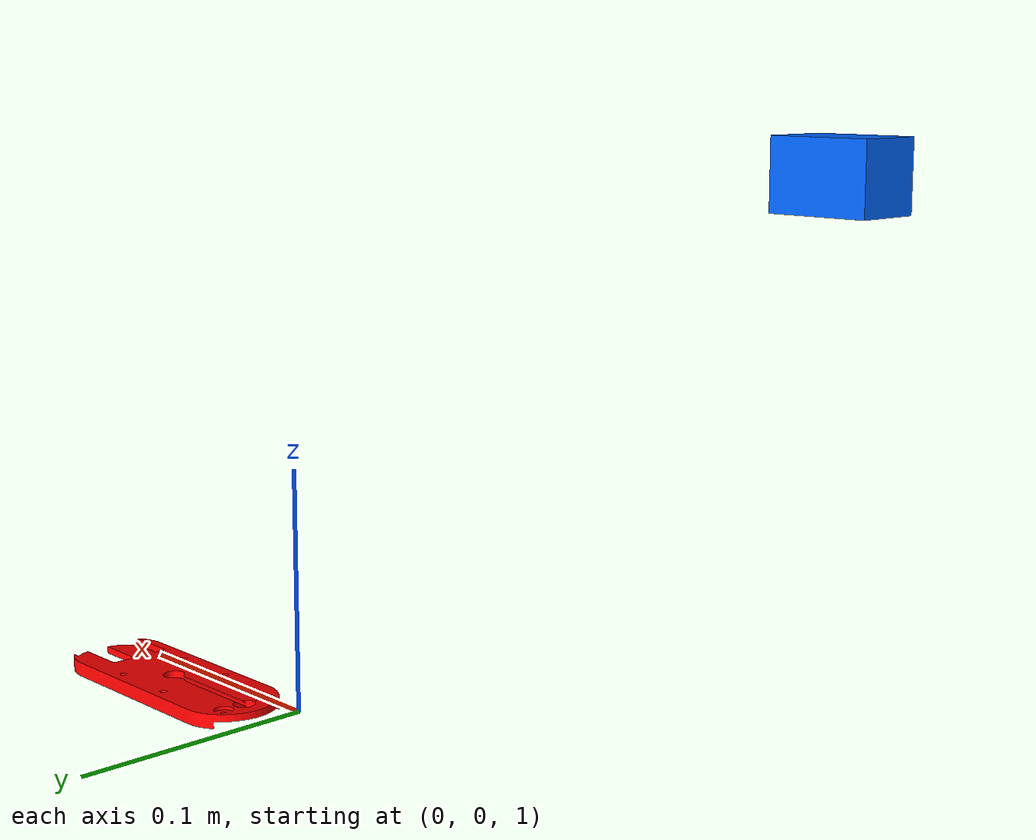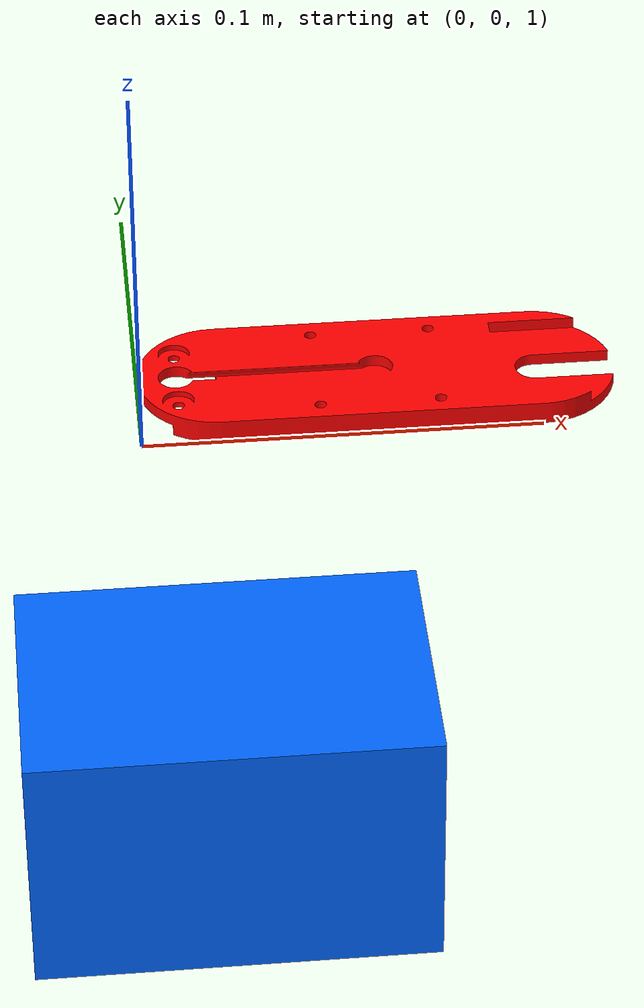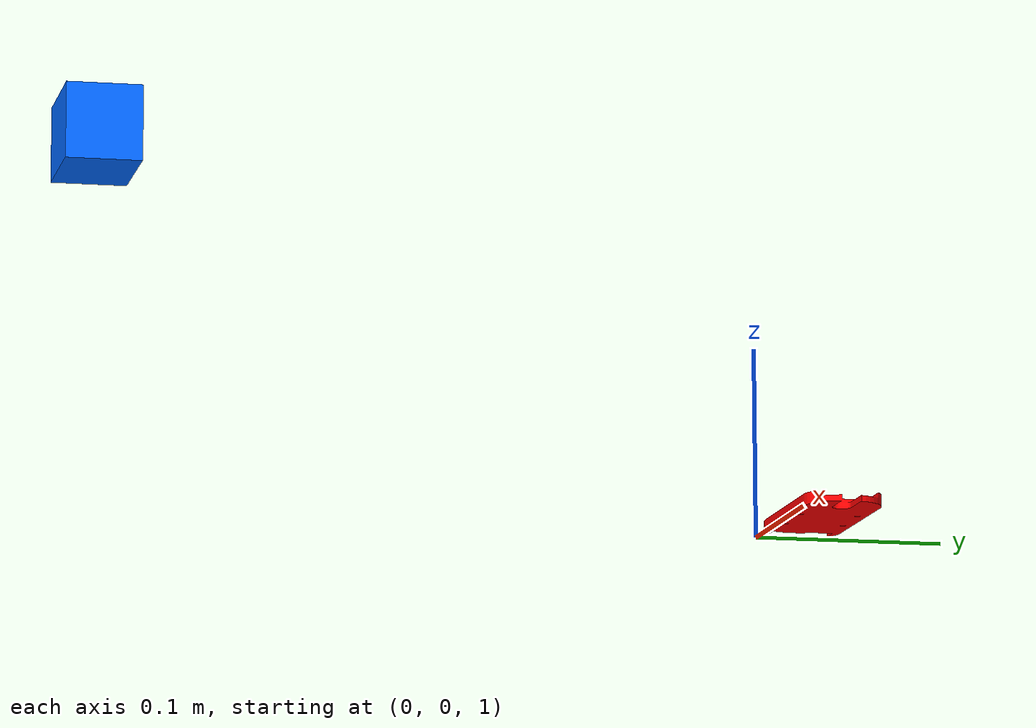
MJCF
<mujoco model="simple_box">
    <!-- 物理引擎选项：重力、时间步长 -->
    <option gravity="0 0 -10" timestep="0.002"/>

    <!-- ====== 网格资源 ====== -->
    <asset>
        <!-- TODO: 把导出的 STL/OBJ 文件放到 3dModels/ 目录，替换 file 属性 -->
        <mesh name="my_part" file="plate3.STL" scale="0.001 0.001 0.001"/>
    </asset>

    <worldbody>
        <!-- 环境光源 -->
        <light diffuse=".5 .5 .5" pos="0 0 3" dir="0 0 -1"/>

        <!-- 地面网格 -->
        <geom type="plane" size="5 5 0.1" rgba=".9 .9 .9 1"/>

        <!-- 自由关节实体（无约束，受重力下落） -->
        <body name="box" pos="0 0 1">
            <freejoint/>

            <!-- 显示用网格（高精度） -->
            <geom type="mesh" mesh="my_part" rgba="1 0 0 1" mass="1"/>

            <!-- 固定在物体上的摄像头，会跟随 box 一起运动；在 simulate 中切换到 box_camera 查看 -->
            <camera name="box_camera" pos="0 -0.35 0.2" xyaxes="1 0 0 0 0 1" fovy="60"/>
            <site name="box_camera_mount" pos="0 -0.35 0.2" type="box" size="0.03 0.02 0.02" rgba="0 0.4 1 1"/>

            <!-- 碰撞用简化形状（高效，不显示）：解除注释可替换 mesh 碰撞 -->
        </body>
    </worldbody>
</mujoco>
